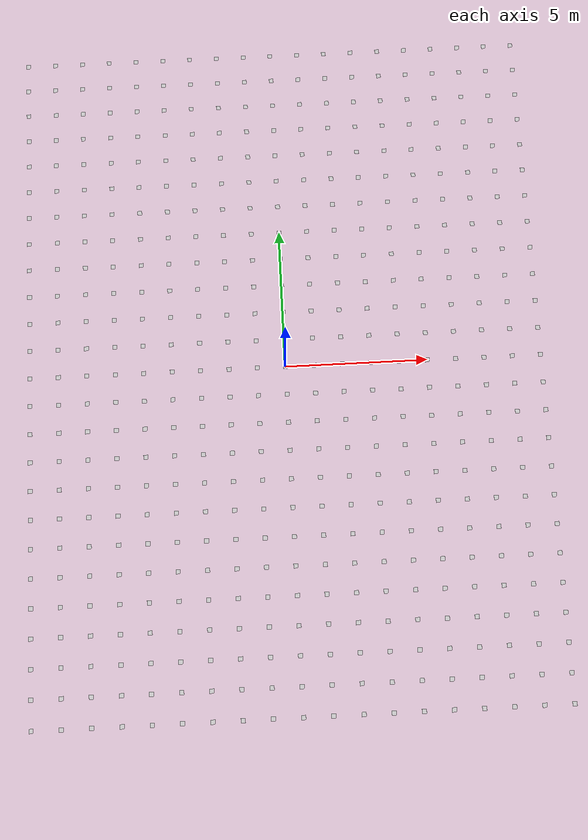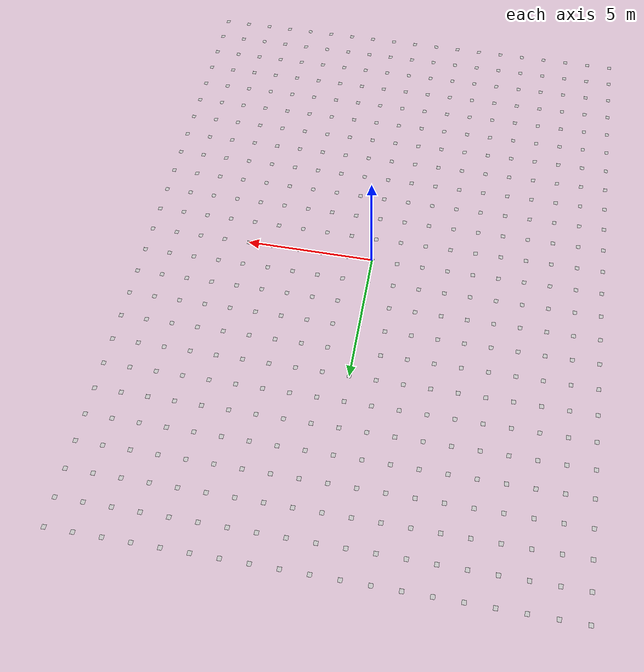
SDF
<?xml version="1.0"?>
<sdf version="1.7">
  <model name="apriltag_floor">
    <static>true</static>
    <pose>0 0 0.001 0 0 0</pose>
    <link name="link">
      <visual name="apriltag_grid">
        <cast_shadows>false</cast_shadows>
        <geometry>
          <mesh>
            <uri>model://apriltag_floor/meshes/apriltag_grid.obj</uri>
          </mesh>
        </geometry>
        <material>
          <script>
            <uri>model://apriltag_floor/materials/scripts</uri>
            <uri>model://apriltag_floor/materials/textures</uri>
            <name>AprilTag/Atlas</name>
          </script>
        </material>
      </visual>
    </link>
  </model>
</sdf>
